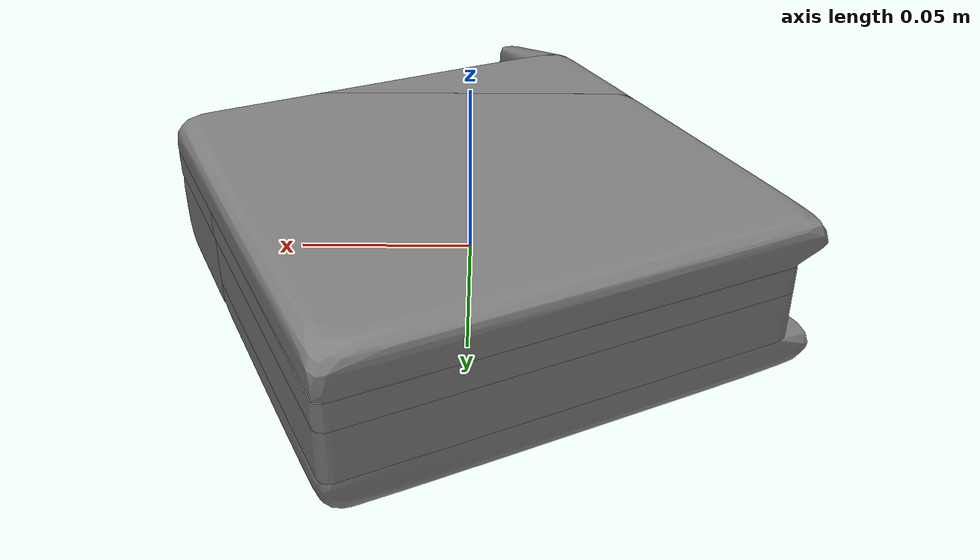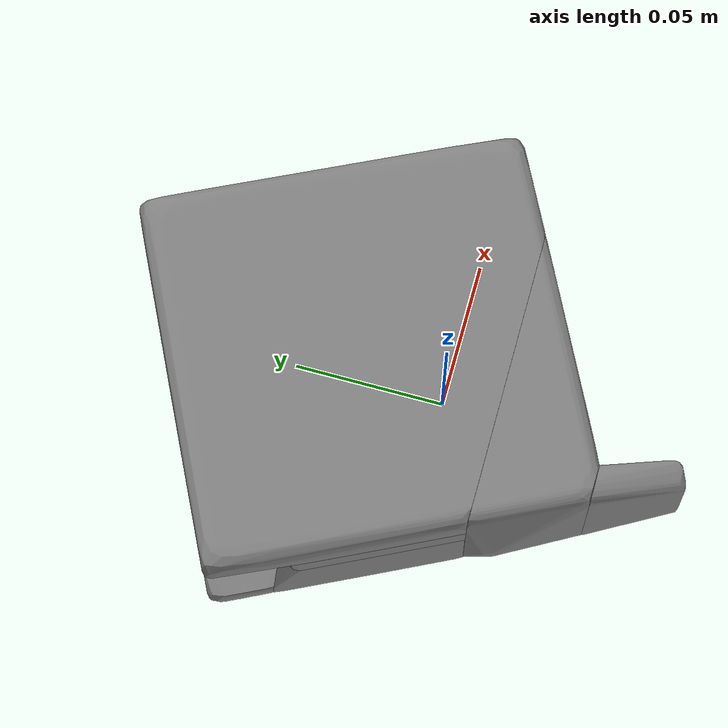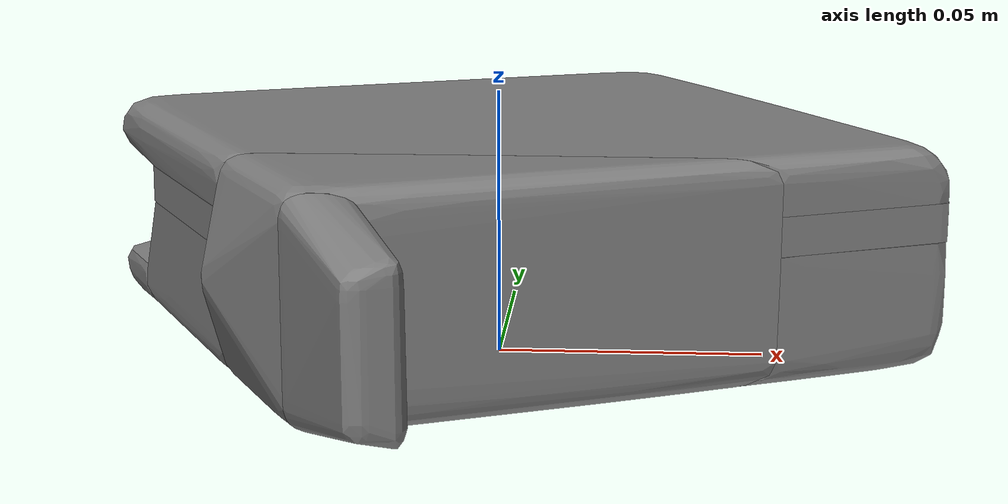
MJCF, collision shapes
<mujoco model="ycb_071_nine_hole_peg_test">
  <compiler meshdir="meshes" texturedir="meshes" angle="radian"/>
  <default>
    <default class="visual"><geom contype="0" conaffinity="0" group="2" density="0"/></default>
    <default class="collision"><geom group="3"/></default>
  </default>
  <asset>
    <texture name="ycb_071_nine_hole_peg_test_tex" type="2d" file="ycb_071_nine_hole_peg_test_texture.png"/>
    <material name="ycb_071_nine_hole_peg_test_mat" texture="ycb_071_nine_hole_peg_test_tex" specular="0.2" shininess="0.3"/>
    <mesh name="ycb_071_nine_hole_peg_test_visual" file="ycb_071_nine_hole_peg_test_visual.obj"/>
    <mesh name="ycb_071_nine_hole_peg_test_hull0" file="ycb_071_nine_hole_peg_test_hull0.obj"/>
    <mesh name="ycb_071_nine_hole_peg_test_hull1" file="ycb_071_nine_hole_peg_test_hull1.obj"/>
    <mesh name="ycb_071_nine_hole_peg_test_hull2" file="ycb_071_nine_hole_peg_test_hull2.obj"/>
    <mesh name="ycb_071_nine_hole_peg_test_hull3" file="ycb_071_nine_hole_peg_test_hull3.obj"/>
    <mesh name="ycb_071_nine_hole_peg_test_hull4" file="ycb_071_nine_hole_peg_test_hull4.obj"/>
    <mesh name="ycb_071_nine_hole_peg_test_hull5" file="ycb_071_nine_hole_peg_test_hull5.obj"/>
    <mesh name="ycb_071_nine_hole_peg_test_hull6" file="ycb_071_nine_hole_peg_test_hull6.obj"/>
    <mesh name="ycb_071_nine_hole_peg_test_hull7" file="ycb_071_nine_hole_peg_test_hull7.obj"/>
  </asset>
  <worldbody>
    <body name="object" pos="0 0 0">
      <freejoint name="object_free"/>
      <geom type="mesh" mesh="ycb_071_nine_hole_peg_test_visual" material="ycb_071_nine_hole_peg_test_mat" class="visual"/>
      <geom type="mesh" mesh="ycb_071_nine_hole_peg_test_hull0" class="collision"/>
      <geom type="mesh" mesh="ycb_071_nine_hole_peg_test_hull1" class="collision"/>
      <geom type="mesh" mesh="ycb_071_nine_hole_peg_test_hull2" class="collision"/>
      <geom type="mesh" mesh="ycb_071_nine_hole_peg_test_hull3" class="collision"/>
      <geom type="mesh" mesh="ycb_071_nine_hole_peg_test_hull4" class="collision"/>
      <geom type="mesh" mesh="ycb_071_nine_hole_peg_test_hull5" class="collision"/>
      <geom type="mesh" mesh="ycb_071_nine_hole_peg_test_hull6" class="collision"/>
      <geom type="mesh" mesh="ycb_071_nine_hole_peg_test_hull7" class="collision"/>
    </body>
  </worldbody>
</mujoco>
